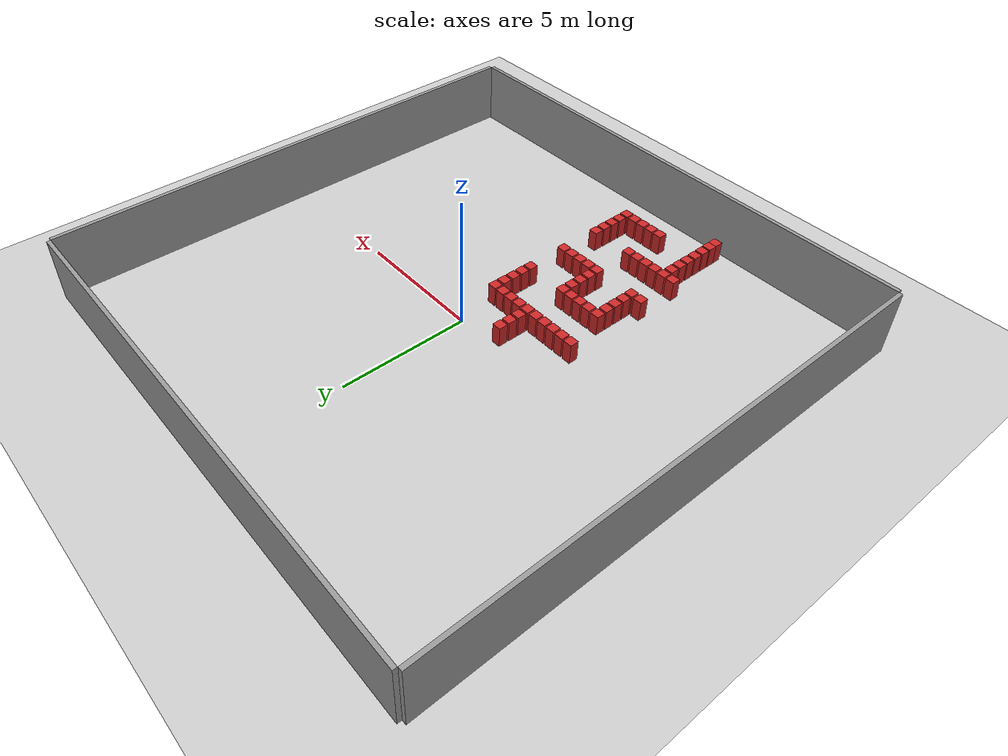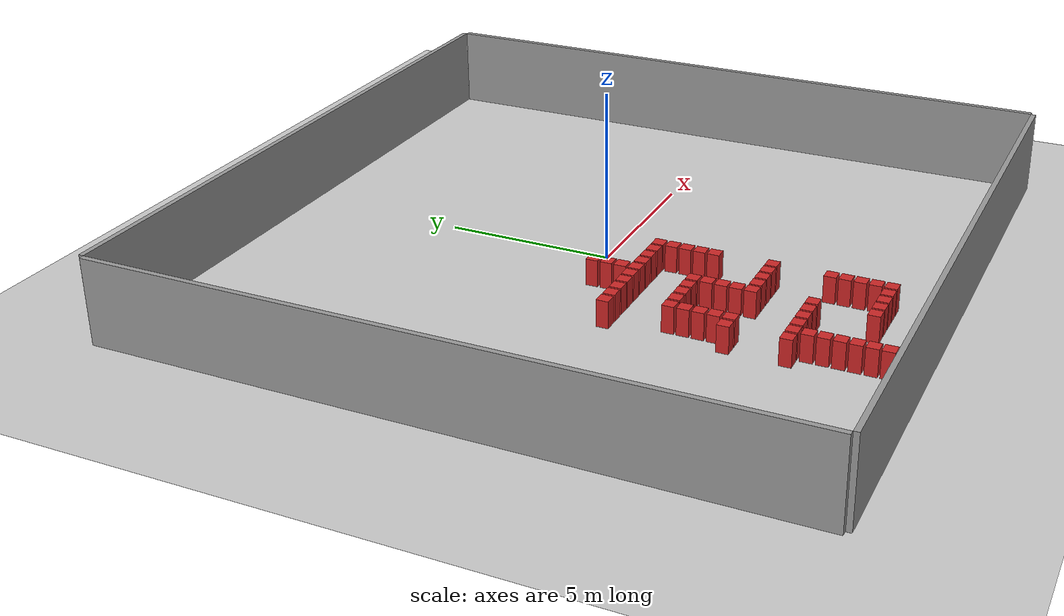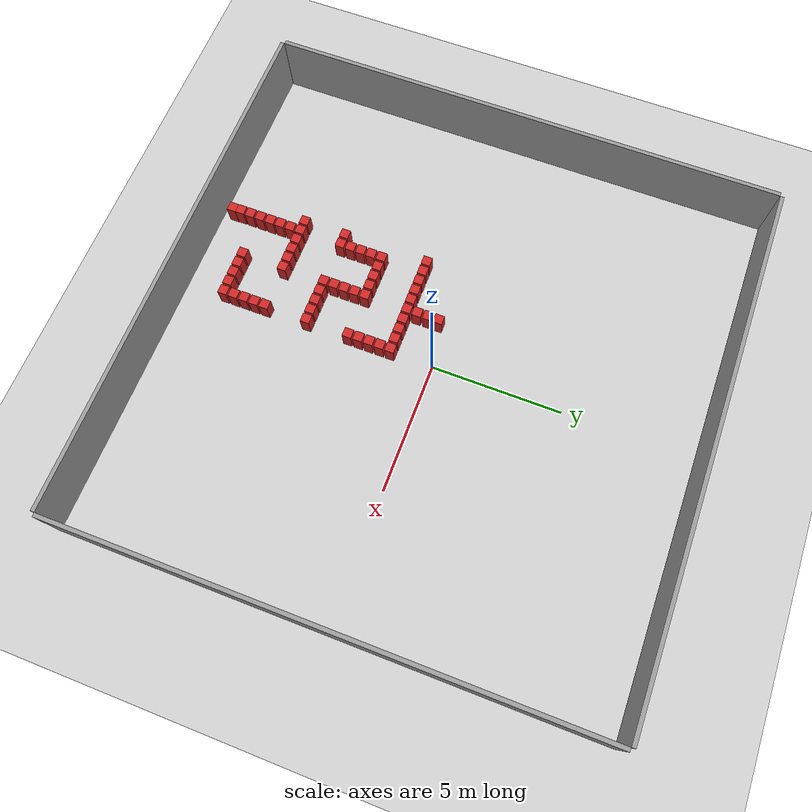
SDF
<sdf version="1.6">
 <world name="default">
  <model name="ground_plane">
   <static>1</static>
   <link name="link">
    <collision name="collision">
     <geometry><plane><normal>0 0 1</normal><size>100 100</size></plane></geometry>
     <surface><friction><ode><mu>100</mu><mu2>50</mu2></ode></friction></surface>
    </collision>
    <visual name="visual">
     <cast_shadows>0</cast_shadows>
     <geometry><plane><normal>0 0 1</normal><size>100 100</size></plane></geometry>
     <material>
      <script><uri>file://media/materials/scripts/gazebo.material</uri><name>Gazebo/Grey</name></script>
     </material>
    </visual>
   </link>
  </model>
  <model name="NamedLocations"><static>1</static><link name="DefaultStart"/></model>
  <model name="20x20_walls">
   <pose>0.044518 0.0211 0 0 -0 0</pose>
   <link name="Wall_1">
    <collision name="Wall_1_Collision">
     <geometry><box><size>20 0.15 2.5</size></box></geometry>
     <pose>0 0 1.25 0 -0 0</pose>
    </collision>
    <visual name="Wall_1_Visual">
     <pose>0 0 1.25 0 -0 0</pose>
     <geometry><box><size>20 0.15 2.5</size></box></geometry>
     <material>
      <script><uri>file://media/materials/scripts/gazebo.material</uri><name>Gazebo/Grey</name></script>
      <ambient>0.976471 0.992157 1 1</ambient>
     </material>
     <meta><layer>0</layer></meta>
    </visual>
    <pose>0 10.08 0 0 -0 0</pose>
   </link>
   <link name="Wall_3">
    <collision name="Wall_3_Collision">
     <geometry><box><size>20 0.15 2.5</size></box></geometry>
     <pose>0 0 1.25 0 -0 0</pose>
    </collision>
    <visual name="Wall_3_Visual">
     <pose>0 0 1.25 0 -0 0</pose>
     <geometry><box><size>20 0.15 2.5</size></box></geometry>
     <material>
      <script><uri>file://media/materials/scripts/gazebo.material</uri><name>Gazebo/Grey</name></script>
      <ambient>0.976471 0.992157 1 1</ambient>
     </material>
     <meta><layer>0</layer></meta>
    </visual>
    <pose>10.08 0 0 0 0 -1.5708</pose>
   </link>
   <link name="Wall_4">
    <collision name="Wall_4_Collision">
     <geometry><box><size>20 0.15 2.5</size></box></geometry>
     <pose>0 0 1.25 0 -0 0</pose>
    </collision>
    <visual name="Wall_4_Visual">
     <pose>0 0 1.25 0 -0 0</pose>
     <geometry><box><size>20 0.15 2.5</size></box></geometry>
     <material>
      <script><uri>file://media/materials/scripts/gazebo.material</uri><name>Gazebo/Grey</name></script>
      <ambient>0.976471 0.992157 1 1</ambient>
     </material>
     <meta><layer>0</layer></meta>
    </visual>
    <pose>0 -10.08 0 0 -0 3.14159</pose>
   </link>
   <link name="Wall_5">
    <collision name="Wall_5_Collision">
     <geometry><box><size>20 0.15 2.5</size></box></geometry>
     <pose>0 0 1.25 0 -0 0</pose>
    </collision>
    <visual name="Wall_5_Visual">
     <pose>0 0 1.25 0 -0 0</pose>
     <geometry><box><size>20 0.15 2.5</size></box></geometry>
     <material>
      <script><uri>file://media/materials/scripts/gazebo.material</uri><name>Gazebo/Grey</name></script>
      <ambient>0.976471 0.992157 1 1</ambient>
     </material>
     <meta><layer>0</layer></meta>
    </visual>
    <pose>-10.08 0 0 0 -0 1.5708</pose>
   </link>
   <static>1</static>
  </model>
  <model name="box_obstacle133">
   <static>0</static>
   <link name="link">
    <pose>0 0 0.1 0 -0 0</pose>
    <inertial>
     <mass>100</mass>
     <inertia>
      <ixx>0.166667</ixx>
      <ixy>0</ixy>
      <ixz>0</ixz>
      <iyy>0.166667</iyy>
      <iyz>0</iyz>
      <izz>0.166667</izz>
     </inertia>
    </inertial>
    <collision name="collision"><geometry><box><size>0.35 0.35 0.8</size></box></geometry></collision>
    <visual name="visual">
     <geometry><box><size>0.35 0.35 0.8</size></box></geometry>
     <material>
      <script><name>Gazebo/Red</name><uri>file://media/materials/scripts/gazebo.material</uri></script>
     </material>
    </visual>
   </link>
   <pose>-3.70034 -6.63994 0.300001 -1e-06 1.7e-05 0.000735</pose>
  </model>
  <model name="box_obstacle134">
   <static>0</static>
   <link name="link">
    <pose>0 0 0.1 0 -0 0</pose>
    <inertial>
     <mass>100</mass>
     <inertia>
      <ixx>0.166667</ixx>
      <ixy>0</ixy>
      <ixz>0</ixz>
      <iyy>0.166667</iyy>
      <iyz>0</iyz>
      <izz>0.166667</izz>
     </inertia>
    </inertial>
    <collision name="collision"><geometry><box><size>0.35 0.35 0.8</size></box></geometry></collision>
    <visual name="visual">
     <geometry><box><size>0.35 0.35 0.8</size></box></geometry>
     <material>
      <script><name>Gazebo/Red</name><uri>file://media/materials/scripts/gazebo.material</uri></script>
     </material>
    </visual>
   </link>
   <pose>-3.70034 -4.95994 0.300001 -1e-06 1.7e-05 0.000735</pose>
  </model>
  <model name="box_obstacle135">
   <static>0</static>
   <link name="link">
    <pose>0 0 0.1 0 -0 0</pose>
    <inertial>
     <mass>100</mass>
     <inertia>
      <ixx>0.166667</ixx>
      <ixy>0</ixy>
      <ixz>0</ixz>
      <iyy>0.166667</iyy>
      <iyz>0</iyz>
      <izz>0.166667</izz>
     </inertia>
    </inertial>
    <collision name="collision"><geometry><box><size>0.35 0.35 0.8</size></box></geometry></collision>
    <visual name="visual">
     <geometry><box><size>0.35 0.35 0.8</size></box></geometry>
     <material>
      <script><name>Gazebo/Red</name><uri>file://media/materials/scripts/gazebo.material</uri></script>
     </material>
    </visual>
   </link>
   <pose>-3.70034 -1.59994 0.300001 -1e-06 1.7e-05 0.000735</pose>
  </model>
  <model name="box_obstacle138">
   <static>0</static>
   <link name="link">
    <pose>0 0 0.1 0 -0 0</pose>
    <inertial>
     <mass>100</mass>
     <inertia>
      <ixx>0.166667</ixx>
      <ixy>0</ixy>
      <ixz>0</ixz>
      <iyy>0.166667</iyy>
      <iyz>0</iyz>
      <izz>0.166667</izz>
     </inertia>
    </inertial>
    <collision name="collision"><geometry><box><size>0.35 0.35 0.8</size></box></geometry></collision>
    <visual name="visual">
     <geometry><box><size>0.35 0.35 0.8</size></box></geometry>
     <material>
      <script><name>Gazebo/Red</name><uri>file://media/materials/scripts/gazebo.material</uri></script>
     </material>
    </visual>
   </link>
   <pose>-3.27613 -9.49865 0.3 7e-06 -4e-06 0.001217</pose>
  </model>
  <model name="box_obstacle139">
   <static>0</static>
   <link name="link">
    <pose>0 0 0.1 0 -0 0</pose>
    <inertial>
     <mass>100</mass>
     <inertia>
      <ixx>0.166667</ixx>
      <ixy>0</ixy>
      <ixz>0</ixz>
      <iyy>0.166667</iyy>
      <iyz>0</iyz>
      <izz>0.166667</izz>
     </inertia>
    </inertial>
    <collision name="collision"><geometry><box><size>0.35 0.35 0.8</size></box></geometry></collision>
    <visual name="visual">
     <geometry><box><size>0.35 0.35 0.8</size></box></geometry>
     <material>
      <script><name>Gazebo/Red</name><uri>file://media/materials/scripts/gazebo.material</uri></script>
     </material>
    </visual>
   </link>
   <pose>-3.28146 -9.14859 0.299999 6e-06 4e-06 0.001076</pose>
  </model>
  <model name="box_obstacle140">
   <static>0</static>
   <link name="link">
    <pose>0 0 0.1 0 -0 0</pose>
    <inertial>
     <mass>100</mass>
     <inertia>
      <ixx>0.166667</ixx>
      <ixy>0</ixy>
      <ixz>0</ixz>
      <iyy>0.166667</iyy>
      <iyz>0</iyz>
      <izz>0.166667</izz>
     </inertia>
    </inertial>
    <collision name="collision"><geometry><box><size>0.35 0.35 0.8</size></box></geometry></collision>
    <visual name="visual">
     <geometry><box><size>0.35 0.35 0.8</size></box></geometry>
     <material>
      <script><name>Gazebo/Red</name><uri>file://media/materials/scripts/gazebo.material</uri></script>
     </material>
    </visual>
   </link>
   <pose>-3.28034 -8.73994 0.300001 -1e-06 1.7e-05 0.000735</pose>
  </model>
  <model name="box_obstacle141">
   <static>0</static>
   <link name="link">
    <pose>0 0 0.1 0 -0 0</pose>
    <inertial>
     <mass>100</mass>
     <inertia>
      <ixx>0.166667</ixx>
      <ixy>0</ixy>
      <ixz>0</ixz>
      <iyy>0.166667</iyy>
      <iyz>0</iyz>
      <izz>0.166667</izz>
     </inertia>
    </inertial>
    <collision name="collision"><geometry><box><size>0.35 0.35 0.8</size></box></geometry></collision>
    <visual name="visual">
     <geometry><box><size>0.35 0.35 0.8</size></box></geometry>
     <material>
      <script><name>Gazebo/Red</name><uri>file://media/materials/scripts/gazebo.material</uri></script>
     </material>
    </visual>
   </link>
   <pose>-3.28034 -8.31994 0.300001 -1e-06 1.7e-05 0.000735</pose>
  </model>
  <model name="box_obstacle142">
   <static>0</static>
   <link name="link">
    <pose>0 0 0.1 0 -0 0</pose>
    <inertial>
     <mass>100</mass>
     <inertia>
      <ixx>0.166667</ixx>
      <ixy>0</ixy>
      <ixz>0</ixz>
      <iyy>0.166667</iyy>
      <iyz>0</iyz>
      <izz>0.166667</izz>
     </inertia>
    </inertial>
    <collision name="collision"><geometry><box><size>0.35 0.35 0.8</size></box></geometry></collision>
    <visual name="visual">
     <geometry><box><size>0.35 0.35 0.8</size></box></geometry>
     <material>
      <script><name>Gazebo/Red</name><uri>file://media/materials/scripts/gazebo.material</uri></script>
     </material>
    </visual>
   </link>
   <pose>-3.28034 -7.89994 0.300001 -1e-06 1.7e-05 0.000735</pose>
  </model>
  <model name="box_obstacle143">
   <static>0</static>
   <link name="link">
    <pose>0 0 0.1 0 -0 0</pose>
    <inertial>
     <mass>100</mass>
     <inertia>
      <ixx>0.166667</ixx>
      <ixy>0</ixy>
      <ixz>0</ixz>
      <iyy>0.166667</iyy>
      <iyz>0</iyz>
      <izz>0.166667</izz>
     </inertia>
    </inertial>
    <collision name="collision"><geometry><box><size>0.35 0.35 0.8</size></box></geometry></collision>
    <visual name="visual">
     <geometry><box><size>0.35 0.35 0.8</size></box></geometry>
     <material>
      <script><name>Gazebo/Red</name><uri>file://media/materials/scripts/gazebo.material</uri></script>
     </material>
    </visual>
   </link>
   <pose>-3.28034 -7.47994 0.300001 -1e-06 1.7e-05 0.000735</pose>
  </model>
  <model name="box_obstacle144">
   <static>0</static>
   <link name="link">
    <pose>0 0 0.1 0 -0 0</pose>
    <inertial>
     <mass>100</mass>
     <inertia>
      <ixx>0.166667</ixx>
      <ixy>0</ixy>
      <ixz>0</ixz>
      <iyy>0.166667</iyy>
      <iyz>0</iyz>
      <izz>0.166667</izz>
     </inertia>
    </inertial>
    <collision name="collision"><geometry><box><size>0.35 0.35 0.8</size></box></geometry></collision>
    <visual name="visual">
     <geometry><box><size>0.35 0.35 0.8</size></box></geometry>
     <material>
      <script><name>Gazebo/Red</name><uri>file://media/materials/scripts/gazebo.material</uri></script>
     </material>
    </visual>
   </link>
   <pose>-3.28034 -7.05994 0.300001 -1e-06 1.7e-05 0.000735</pose>
  </model>
  <model name="box_obstacle145">
   <static>0</static>
   <link name="link">
    <pose>0 0 0.1 0 -0 0</pose>
    <inertial>
     <mass>100</mass>
     <inertia>
      <ixx>0.166667</ixx>
      <ixy>0</ixy>
      <ixz>0</ixz>
      <iyy>0.166667</iyy>
      <iyz>0</iyz>
      <izz>0.166667</izz>
     </inertia>
    </inertial>
    <collision name="collision"><geometry><box><size>0.35 0.35 0.8</size></box></geometry></collision>
    <visual name="visual">
     <geometry><box><size>0.35 0.35 0.8</size></box></geometry>
     <material>
      <script><name>Gazebo/Red</name><uri>file://media/materials/scripts/gazebo.material</uri></script>
     </material>
    </visual>
   </link>
   <pose>-3.28034 -6.63994 0.300001 -1e-06 1.7e-05 0.000735</pose>
  </model>
  <model name="box_obstacle146">
   <static>0</static>
   <link name="link">
    <pose>0 0 0.1 0 -0 0</pose>
    <inertial>
     <mass>100</mass>
     <inertia>
      <ixx>0.166667</ixx>
      <ixy>0</ixy>
      <ixz>0</ixz>
      <iyy>0.166667</iyy>
      <iyz>0</iyz>
      <izz>0.166667</izz>
     </inertia>
    </inertial>
    <collision name="collision"><geometry><box><size>0.35 0.35 0.8</size></box></geometry></collision>
    <visual name="visual">
     <geometry><box><size>0.35 0.35 0.8</size></box></geometry>
     <material>
      <script><name>Gazebo/Red</name><uri>file://media/materials/scripts/gazebo.material</uri></script>
     </material>
    </visual>
   </link>
   <pose>-3.28034 -4.95994 0.300001 -1e-06 1.7e-05 0.000735</pose>
  </model>
  <model name="box_obstacle147">
   <static>0</static>
   <link name="link">
    <pose>0 0 0.1 0 -0 0</pose>
    <inertial>
     <mass>100</mass>
     <inertia>
      <ixx>0.166667</ixx>
      <ixy>0</ixy>
      <ixz>0</ixz>
      <iyy>0.166667</iyy>
      <iyz>0</iyz>
      <izz>0.166667</izz>
     </inertia>
    </inertial>
    <collision name="collision"><geometry><box><size>0.35 0.35 0.8</size></box></geometry></collision>
    <visual name="visual">
     <geometry><box><size>0.35 0.35 0.8</size></box></geometry>
     <material>
      <script><name>Gazebo/Red</name><uri>file://media/materials/scripts/gazebo.material</uri></script>
     </material>
    </visual>
   </link>
   <pose>-3.28034 -4.53994 0.300001 -1e-06 1.7e-05 0.000735</pose>
  </model>
  <model name="box_obstacle148">
   <static>0</static>
   <link name="link">
    <pose>0 0 0.1 0 -0 0</pose>
    <inertial>
     <mass>100</mass>
     <inertia>
      <ixx>0.166667</ixx>
      <ixy>0</ixy>
      <ixz>0</ixz>
      <iyy>0.166667</iyy>
      <iyz>0</iyz>
      <izz>0.166667</izz>
     </inertia>
    </inertial>
    <collision name="collision"><geometry><box><size>0.35 0.35 0.8</size></box></geometry></collision>
    <visual name="visual">
     <geometry><box><size>0.35 0.35 0.8</size></box></geometry>
     <material>
      <script><name>Gazebo/Red</name><uri>file://media/materials/scripts/gazebo.material</uri></script>
     </material>
    </visual>
   </link>
   <pose>-3.28034 -4.11994 0.300001 -1e-06 1.7e-05 0.000735</pose>
  </model>
  <model name="box_obstacle149">
   <static>0</static>
   <link name="link">
    <pose>0 0 0.1 0 -0 0</pose>
    <inertial>
     <mass>100</mass>
     <inertia>
      <ixx>0.166667</ixx>
      <ixy>0</ixy>
      <ixz>0</ixz>
      <iyy>0.166667</iyy>
      <iyz>0</iyz>
      <izz>0.166667</izz>
     </inertia>
    </inertial>
    <collision name="collision"><geometry><box><size>0.35 0.35 0.8</size></box></geometry></collision>
    <visual name="visual">
     <geometry><box><size>0.35 0.35 0.8</size></box></geometry>
     <material>
      <script><name>Gazebo/Red</name><uri>file://media/materials/scripts/gazebo.material</uri></script>
     </material>
    </visual>
   </link>
   <pose>-3.28034 -3.69994 0.300001 -1e-06 1.7e-05 0.000735</pose>
  </model>
  <model name="box_obstacle150">
   <static>0</static>
   <link name="link">
    <pose>0 0 0.1 0 -0 0</pose>
    <inertial>
     <mass>100</mass>
     <inertia>
      <ixx>0.166667</ixx>
      <ixy>0</ixy>
      <ixz>0</ixz>
      <iyy>0.166667</iyy>
      <iyz>0</iyz>
      <izz>0.166667</izz>
     </inertia>
    </inertial>
    <collision name="collision"><geometry><box><size>0.35 0.35 0.8</size></box></geometry></collision>
    <visual name="visual">
     <geometry><box><size>0.35 0.35 0.8</size></box></geometry>
     <material>
      <script><name>Gazebo/Red</name><uri>file://media/materials/scripts/gazebo.material</uri></script>
     </material>
    </visual>
   </link>
   <pose>-3.28034 -3.27994 0.300001 -1e-06 1.7e-05 0.000735</pose>
  </model>
  <model name="box_obstacle151">
   <static>0</static>
   <link name="link">
    <pose>0 0 0.1 0 -0 0</pose>
    <inertial>
     <mass>100</mass>
     <inertia>
      <ixx>0.166667</ixx>
      <ixy>0</ixy>
      <ixz>0</ixz>
      <iyy>0.166667</iyy>
      <iyz>0</iyz>
      <izz>0.166667</izz>
     </inertia>
    </inertial>
    <collision name="collision"><geometry><box><size>0.35 0.35 0.8</size></box></geometry></collision>
    <visual name="visual">
     <geometry><box><size>0.35 0.35 0.8</size></box></geometry>
     <material>
      <script><name>Gazebo/Red</name><uri>file://media/materials/scripts/gazebo.material</uri></script>
     </material>
    </visual>
   </link>
   <pose>-3.28034 -1.59994 0.300001 -1e-06 1.7e-05 0.000735</pose>
  </model>
  <model name="box_obstacle167">
   <static>0</static>
   <link name="link">
    <pose>0 0 0.1 0 -0 0</pose>
    <inertial>
     <mass>100</mass>
     <inertia>
      <ixx>0.166667</ixx>
      <ixy>0</ixy>
      <ixz>0</ixz>
      <iyy>0.166667</iyy>
      <iyz>0</iyz>
      <izz>0.166667</izz>
     </inertia>
    </inertial>
    <collision name="collision"><geometry><box><size>0.35 0.35 0.8</size></box></geometry></collision>
    <visual name="visual">
     <geometry><box><size>0.35 0.35 0.8</size></box></geometry>
     <material>
      <script><name>Gazebo/Red</name><uri>file://media/materials/scripts/gazebo.material</uri></script>
     </material>
    </visual>
   </link>
   <pose>-2.86034 -6.63994 0.300001 -1e-06 1.7e-05 0.000735</pose>
  </model>
  <model name="box_obstacle168">
   <static>0</static>
   <link name="link">
    <pose>0 0 0.1 0 -0 0</pose>
    <inertial>
     <mass>100</mass>
     <inertia>
      <ixx>0.166667</ixx>
      <ixy>0</ixy>
      <ixz>0</ixz>
      <iyy>0.166667</iyy>
      <iyz>0</iyz>
      <izz>0.166667</izz>
     </inertia>
    </inertial>
    <collision name="collision"><geometry><box><size>0.35 0.35 0.8</size></box></geometry></collision>
    <visual name="visual">
     <geometry><box><size>0.35 0.35 0.8</size></box></geometry>
     <material>
      <script><name>Gazebo/Red</name><uri>file://media/materials/scripts/gazebo.material</uri></script>
     </material>
    </visual>
   </link>
   <pose>-2.86034 -3.27994 0.300001 -1e-06 1.7e-05 0.000735</pose>
  </model>
  <model name="box_obstacle169">
   <static>0</static>
   <link name="link">
    <pose>0 0 0.1 0 -0 0</pose>
    <inertial>
     <mass>100</mass>
     <inertia>
      <ixx>0.166667</ixx>
      <ixy>0</ixy>
      <ixz>0</ixz>
      <iyy>0.166667</iyy>
      <iyz>0</iyz>
      <izz>0.166667</izz>
     </inertia>
    </inertial>
    <collision name="collision"><geometry><box><size>0.35 0.35 0.8</size></box></geometry></collision>
    <visual name="visual">
     <geometry><box><size>0.35 0.35 0.8</size></box></geometry>
     <material>
      <script><name>Gazebo/Red</name><uri>file://media/materials/scripts/gazebo.material</uri></script>
     </material>
    </visual>
   </link>
   <pose>-2.86034 -1.59994 0.300001 -1e-06 1.7e-05 0.000735</pose>
  </model>
  <model name="box_obstacle173">
   <static>0</static>
   <link name="link">
    <pose>0 0 0.1 0 -0 0</pose>
    <inertial>
     <mass>100</mass>
     <inertia>
      <ixx>0.166667</ixx>
      <ixy>0</ixy>
      <ixz>0</ixz>
      <iyy>0.166667</iyy>
      <iyz>0</iyz>
      <izz>0.166667</izz>
     </inertia>
    </inertial>
    <collision name="collision"><geometry><box><size>0.35 0.35 0.8</size></box></geometry></collision>
    <visual name="visual">
     <geometry><box><size>0.35 0.35 0.8</size></box></geometry>
     <material>
      <script><name>Gazebo/Red</name><uri>file://media/materials/scripts/gazebo.material</uri></script>
     </material>
    </visual>
   </link>
   <pose>-2.44034 -6.63994 0.300001 -1e-06 1.7e-05 0.000735</pose>
  </model>
  <model name="box_obstacle174">
   <static>0</static>
   <link name="link">
    <pose>0 0 0.1 0 -0 0</pose>
    <inertial>
     <mass>100</mass>
     <inertia>
      <ixx>0.166667</ixx>
      <ixy>0</ixy>
      <ixz>0</ixz>
      <iyy>0.166667</iyy>
      <iyz>0</iyz>
      <izz>0.166667</izz>
     </inertia>
    </inertial>
    <collision name="collision"><geometry><box><size>0.35 0.35 0.8</size></box></geometry></collision>
    <visual name="visual">
     <geometry><box><size>0.35 0.35 0.8</size></box></geometry>
     <material>
      <script><name>Gazebo/Red</name><uri>file://media/materials/scripts/gazebo.material</uri></script>
     </material>
    </visual>
   </link>
   <pose>-2.44034 -3.27994 0.300001 -1e-06 1.7e-05 0.000735</pose>
  </model>
  <model name="box_obstacle175">
   <static>0</static>
   <link name="link">
    <pose>0 0 0.1 0 -0 0</pose>
    <inertial>
     <mass>100</mass>
     <inertia>
      <ixx>0.166667</ixx>
      <ixy>0</ixy>
      <ixz>0</ixz>
      <iyy>0.166667</iyy>
      <iyz>0</iyz>
      <izz>0.166667</izz>
     </inertia>
    </inertial>
    <collision name="collision"><geometry><box><size>0.35 0.35 0.8</size></box></geometry></collision>
    <visual name="visual">
     <geometry><box><size>0.35 0.35 0.8</size></box></geometry>
     <material>
      <script><name>Gazebo/Red</name><uri>file://media/materials/scripts/gazebo.material</uri></script>
     </material>
    </visual>
   </link>
   <pose>-2.44034 -1.59994 0.300001 -1e-06 1.7e-05 0.000735</pose>
  </model>
  <model name="box_obstacle179">
   <static>0</static>
   <link name="link">
    <pose>0 0 0.1 0 -0 0</pose>
    <inertial>
     <mass>100</mass>
     <inertia>
      <ixx>0.166667</ixx>
      <ixy>0</ixy>
      <ixz>0</ixz>
      <iyy>0.166667</iyy>
      <iyz>0</iyz>
      <izz>0.166667</izz>
     </inertia>
    </inertial>
    <collision name="collision"><geometry><box><size>0.35 0.35 0.8</size></box></geometry></collision>
    <visual name="visual">
     <geometry><box><size>0.35 0.35 0.8</size></box></geometry>
     <material>
      <script><name>Gazebo/Red</name><uri>file://media/materials/scripts/gazebo.material</uri></script>
     </material>
    </visual>
   </link>
   <pose>-2.02034 -6.63994 0.300001 -1e-06 1.7e-05 0.000735</pose>
  </model>
  <model name="box_obstacle180">
   <static>0</static>
   <link name="link">
    <pose>0 0 0.1 0 -0 0</pose>
    <inertial>
     <mass>100</mass>
     <inertia>
      <ixx>0.166667</ixx>
      <ixy>0</ixy>
      <ixz>0</ixz>
      <iyy>0.166667</iyy>
      <iyz>0</iyz>
      <izz>0.166667</izz>
     </inertia>
    </inertial>
    <collision name="collision"><geometry><box><size>0.35 0.35 0.8</size></box></geometry></collision>
    <visual name="visual">
     <geometry><box><size>0.35 0.35 0.8</size></box></geometry>
     <material>
      <script><name>Gazebo/Red</name><uri>file://media/materials/scripts/gazebo.material</uri></script>
     </material>
    </visual>
   </link>
   <pose>-2.02034 -3.27994 0.300001 -1e-06 1.7e-05 0.000735</pose>
  </model>
  <model name="box_obstacle181">
   <static>0</static>
   <link name="link">
    <pose>0 0 0.1 0 -0 0</pose>
    <inertial>
     <mass>100</mass>
     <inertia>
      <ixx>0.166667</ixx>
      <ixy>0</ixy>
      <ixz>0</ixz>
      <iyy>0.166667</iyy>
      <iyz>0</iyz>
      <izz>0.166667</izz>
     </inertia>
    </inertial>
    <collision name="collision"><geometry><box><size>0.35 0.35 0.8</size></box></geometry></collision>
    <visual name="visual">
     <geometry><box><size>0.35 0.35 0.8</size></box></geometry>
     <material>
      <script><name>Gazebo/Red</name><uri>file://media/materials/scripts/gazebo.material</uri></script>
     </material>
    </visual>
   </link>
   <pose>-2.02034 -1.59994 0.300001 -1e-06 1.7e-05 0.000735</pose>
  </model>
  <model name="box_obstacle185">
   <static>0</static>
   <link name="link">
    <pose>0 0 0.1 0 -0 0</pose>
    <inertial>
     <mass>100</mass>
     <inertia>
      <ixx>0.166667</ixx>
      <ixy>0</ixy>
      <ixz>0</ixz>
      <iyy>0.166667</iyy>
      <iyz>0</iyz>
      <izz>0.166667</izz>
     </inertia>
    </inertial>
    <collision name="collision"><geometry><box><size>0.35 0.35 0.8</size></box></geometry></collision>
    <visual name="visual">
     <geometry><box><size>0.35 0.35 0.8</size></box></geometry>
     <material>
      <script><name>Gazebo/Red</name><uri>file://media/materials/scripts/gazebo.material</uri></script>
     </material>
    </visual>
   </link>
   <pose>-1.60034 -8.31994 0.300001 -1e-06 1.7e-05 0.000735</pose>
  </model>
  <model name="box_obstacle186">
   <static>0</static>
   <link name="link">
    <pose>0 0 0.1 0 -0 0</pose>
    <inertial>
     <mass>100</mass>
     <inertia>
      <ixx>0.166667</ixx>
      <ixy>0</ixy>
      <ixz>0</ixz>
      <iyy>0.166667</iyy>
      <iyz>0</iyz>
      <izz>0.166667</izz>
     </inertia>
    </inertial>
    <collision name="collision"><geometry><box><size>0.35 0.35 0.8</size></box></geometry></collision>
    <visual name="visual">
     <geometry><box><size>0.35 0.35 0.8</size></box></geometry>
     <material>
      <script><name>Gazebo/Red</name><uri>file://media/materials/scripts/gazebo.material</uri></script>
     </material>
    </visual>
   </link>
   <pose>-1.60034 -6.63994 0.300001 -1e-06 1.7e-05 0.000735</pose>
  </model>
  <model name="box_obstacle187">
   <static>0</static>
   <link name="link">
    <pose>0 0 0.1 0 -0 0</pose>
    <inertial>
     <mass>100</mass>
     <inertia>
      <ixx>0.166667</ixx>
      <ixy>0</ixy>
      <ixz>0</ixz>
      <iyy>0.166667</iyy>
      <iyz>0</iyz>
      <izz>0.166667</izz>
     </inertia>
    </inertial>
    <collision name="collision"><geometry><box><size>0.35 0.35 0.8</size></box></geometry></collision>
    <visual name="visual">
     <geometry><box><size>0.35 0.35 0.8</size></box></geometry>
     <material>
      <script><name>Gazebo/Red</name><uri>file://media/materials/scripts/gazebo.material</uri></script>
     </material>
    </visual>
   </link>
   <pose>-1.60034 -4.95994 0.300001 -1e-06 1.7e-05 0.000735</pose>
  </model>
  <model name="box_obstacle188">
   <static>0</static>
   <link name="link">
    <pose>0 0 0.1 0 -0 0</pose>
    <inertial>
     <mass>100</mass>
     <inertia>
      <ixx>0.166667</ixx>
      <ixy>0</ixy>
      <ixz>0</ixz>
      <iyy>0.166667</iyy>
      <iyz>0</iyz>
      <izz>0.166667</izz>
     </inertia>
    </inertial>
    <collision name="collision"><geometry><box><size>0.35 0.35 0.8</size></box></geometry></collision>
    <visual name="visual">
     <geometry><box><size>0.35 0.35 0.8</size></box></geometry>
     <material>
      <script><name>Gazebo/Red</name><uri>file://media/materials/scripts/gazebo.material</uri></script>
     </material>
    </visual>
   </link>
   <pose>-1.60034 -4.53994 0.300001 -1e-06 1.7e-05 0.000735</pose>
  </model>
  <model name="box_obstacle189">
   <static>0</static>
   <link name="link">
    <pose>0 0 0.1 0 -0 0</pose>
    <inertial>
     <mass>100</mass>
     <inertia>
      <ixx>0.166667</ixx>
      <ixy>0</ixy>
      <ixz>0</ixz>
      <iyy>0.166667</iyy>
      <iyz>0</iyz>
      <izz>0.166667</izz>
     </inertia>
    </inertial>
    <collision name="collision"><geometry><box><size>0.35 0.35 0.8</size></box></geometry></collision>
    <visual name="visual">
     <geometry><box><size>0.35 0.35 0.8</size></box></geometry>
     <material>
      <script><name>Gazebo/Red</name><uri>file://media/materials/scripts/gazebo.material</uri></script>
     </material>
    </visual>
   </link>
   <pose>-1.60034 -4.11994 0.300001 -1e-06 1.7e-05 0.000735</pose>
  </model>
  <model name="box_obstacle190">
   <static>0</static>
   <link name="link">
    <pose>0 0 0.1 0 -0 0</pose>
    <inertial>
     <mass>100</mass>
     <inertia>
      <ixx>0.166667</ixx>
      <ixy>0</ixy>
      <ixz>0</ixz>
      <iyy>0.166667</iyy>
      <iyz>0</iyz>
      <izz>0.166667</izz>
     </inertia>
    </inertial>
    <collision name="collision"><geometry><box><size>0.35 0.35 0.8</size></box></geometry></collision>
    <visual name="visual">
     <geometry><box><size>0.35 0.35 0.8</size></box></geometry>
     <material>
      <script><name>Gazebo/Red</name><uri>file://media/materials/scripts/gazebo.material</uri></script>
     </material>
    </visual>
   </link>
   <pose>-1.60034 -3.69994 0.300001 -1e-06 1.7e-05 0.000735</pose>
  </model>
  <model name="box_obstacle191">
   <static>0</static>
   <link name="link">
    <pose>0 0 0.1 0 -0 0</pose>
    <inertial>
     <mass>100</mass>
     <inertia>
      <ixx>0.166667</ixx>
      <ixy>0</ixy>
      <ixz>0</ixz>
      <iyy>0.166667</iyy>
      <iyz>0</iyz>
      <izz>0.166667</izz>
     </inertia>
    </inertial>
    <collision name="collision"><geometry><box><size>0.35 0.35 0.8</size></box></geometry></collision>
    <visual name="visual">
     <geometry><box><size>0.35 0.35 0.8</size></box></geometry>
     <material>
      <script><name>Gazebo/Red</name><uri>file://media/materials/scripts/gazebo.material</uri></script>
     </material>
    </visual>
   </link>
   <pose>-1.60034 -3.27994 0.300001 -1e-06 1.7e-05 0.000735</pose>
  </model>
  <model name="box_obstacle192">
   <static>0</static>
   <link name="link">
    <pose>0 0 0.1 0 -0 0</pose>
    <inertial>
     <mass>100</mass>
     <inertia>
      <ixx>0.166667</ixx>
      <ixy>0</ixy>
      <ixz>0</ixz>
      <iyy>0.166667</iyy>
      <iyz>0</iyz>
      <izz>0.166667</izz>
     </inertia>
    </inertial>
    <collision name="collision"><geometry><box><size>0.35 0.35 0.8</size></box></geometry></collision>
    <visual name="visual">
     <geometry><box><size>0.35 0.35 0.8</size></box></geometry>
     <material>
      <script><name>Gazebo/Red</name><uri>file://media/materials/scripts/gazebo.material</uri></script>
     </material>
    </visual>
   </link>
   <pose>-1.60034 -1.59994 0.300001 -1e-06 1.7e-05 0.000735</pose>
  </model>
  <model name="box_obstacle193">
   <static>0</static>
   <link name="link">
    <pose>0 0 0.1 0 -0 0</pose>
    <inertial>
     <mass>100</mass>
     <inertia>
      <ixx>0.166667</ixx>
      <ixy>0</ixy>
      <ixz>0</ixz>
      <iyy>0.166667</iyy>
      <iyz>0</iyz>
      <izz>0.166667</izz>
     </inertia>
    </inertial>
    <collision name="collision"><geometry><box><size>0.35 0.35 0.8</size></box></geometry></collision>
    <visual name="visual">
     <geometry><box><size>0.35 0.35 0.8</size></box></geometry>
     <material>
      <script><name>Gazebo/Red</name><uri>file://media/materials/scripts/gazebo.material</uri></script>
     </material>
    </visual>
   </link>
   <pose>-1.60034 -1.17994 0.300001 -1e-06 1.7e-05 0.000735</pose>
  </model>
  <model name="box_obstacle194">
   <static>0</static>
   <link name="link">
    <pose>0 0 0.1 0 -0 0</pose>
    <inertial>
     <mass>100</mass>
     <inertia>
      <ixx>0.166667</ixx>
      <ixy>0</ixy>
      <ixz>0</ixz>
      <iyy>0.166667</iyy>
      <iyz>0</iyz>
      <izz>0.166667</izz>
     </inertia>
    </inertial>
    <collision name="collision"><geometry><box><size>0.35 0.35 0.8</size></box></geometry></collision>
    <visual name="visual">
     <geometry><box><size>0.35 0.35 0.8</size></box></geometry>
     <material>
      <script><name>Gazebo/Red</name><uri>file://media/materials/scripts/gazebo.material</uri></script>
     </material>
    </visual>
   </link>
   <pose>-1.60034 -0.759939 0.300001 -1e-06 1.7e-05 0.000735</pose>
  </model>
  <model name="box_obstacle195">
   <static>0</static>
   <link name="link">
    <pose>0 0 0.1 0 -0 0</pose>
    <inertial>
     <mass>100</mass>
     <inertia>
      <ixx>0.166667</ixx>
      <ixy>0</ixy>
      <ixz>0</ixz>
      <iyy>0.166667</iyy>
      <iyz>0</iyz>
      <izz>0.166667</izz>
     </inertia>
    </inertial>
    <collision name="collision"><geometry><box><size>0.35 0.35 0.8</size></box></geometry></collision>
    <visual name="visual">
     <geometry><box><size>0.35 0.35 0.8</size></box></geometry>
     <material>
      <script><name>Gazebo/Red</name><uri>file://media/materials/scripts/gazebo.material</uri></script>
     </material>
    </visual>
   </link>
   <pose>-1.60034 -0.339939 0.300001 -1e-06 1.7e-05 0.000735</pose>
  </model>
  <model name="box_obstacle208">
   <static>0</static>
   <link name="link">
    <pose>0 0 0.1 0 -0 0</pose>
    <inertial>
     <mass>100</mass>
     <inertia>
      <ixx>0.166667</ixx>
      <ixy>0</ixy>
      <ixz>0</ixz>
      <iyy>0.166667</iyy>
      <iyz>0</iyz>
      <izz>0.166667</izz>
     </inertia>
    </inertial>
    <collision name="collision"><geometry><box><size>0.35 0.35 0.8</size></box></geometry></collision>
    <visual name="visual">
     <geometry><box><size>0.35 0.35 0.8</size></box></geometry>
     <material>
      <script><name>Gazebo/Red</name><uri>file://media/materials/scripts/gazebo.material</uri></script>
     </material>
    </visual>
   </link>
   <pose>-1.18034 -8.31994 0.300001 -1e-06 1.7e-05 0.000735</pose>
  </model>
  <model name="box_obstacle209">
   <static>0</static>
   <link name="link">
    <pose>0 0 0.1 0 -0 0</pose>
    <inertial>
     <mass>100</mass>
     <inertia>
      <ixx>0.166667</ixx>
      <ixy>0</ixy>
      <ixz>0</ixz>
      <iyy>0.166667</iyy>
      <iyz>0</iyz>
      <izz>0.166667</izz>
     </inertia>
    </inertial>
    <collision name="collision"><geometry><box><size>0.35 0.35 0.8</size></box></geometry></collision>
    <visual name="visual">
     <geometry><box><size>0.35 0.35 0.8</size></box></geometry>
     <material>
      <script><name>Gazebo/Red</name><uri>file://media/materials/scripts/gazebo.material</uri></script>
     </material>
    </visual>
   </link>
   <pose>-1.18034 -4.95994 0.300001 -1e-06 1.7e-05 0.000735</pose>
  </model>
  <model name="box_obstacle210">
   <static>0</static>
   <link name="link">
    <pose>0 0 0.1 0 -0 0</pose>
    <inertial>
     <mass>100</mass>
     <inertia>
      <ixx>0.166667</ixx>
      <ixy>0</ixy>
      <ixz>0</ixz>
      <iyy>0.166667</iyy>
      <iyz>0</iyz>
      <izz>0.166667</izz>
     </inertia>
    </inertial>
    <collision name="collision"><geometry><box><size>0.35 0.35 0.8</size></box></geometry></collision>
    <visual name="visual">
     <geometry><box><size>0.35 0.35 0.8</size></box></geometry>
     <material>
      <script><name>Gazebo/Red</name><uri>file://media/materials/scripts/gazebo.material</uri></script>
     </material>
    </visual>
   </link>
   <pose>-1.18034 -1.59994 0.300001 -1e-06 1.7e-05 0.000735</pose>
  </model>
  <model name="box_obstacle214">
   <static>0</static>
   <link name="link">
    <pose>0 0 0.1 0 -0 0</pose>
    <inertial>
     <mass>100</mass>
     <inertia>
      <ixx>0.166667</ixx>
      <ixy>0</ixy>
      <ixz>0</ixz>
      <iyy>0.166667</iyy>
      <iyz>0</iyz>
      <izz>0.166667</izz>
     </inertia>
    </inertial>
    <collision name="collision"><geometry><box><size>0.35 0.35 0.8</size></box></geometry></collision>
    <visual name="visual">
     <geometry><box><size>0.35 0.35 0.8</size></box></geometry>
     <material>
      <script><name>Gazebo/Red</name><uri>file://media/materials/scripts/gazebo.material</uri></script>
     </material>
    </visual>
   </link>
   <pose>-0.760339 -8.31994 0.300001 -1e-06 1.7e-05 0.000735</pose>
  </model>
  <model name="box_obstacle215">
   <static>0</static>
   <link name="link">
    <pose>0 0 0.1 0 -0 0</pose>
    <inertial>
     <mass>100</mass>
     <inertia>
      <ixx>0.166667</ixx>
      <ixy>0</ixy>
      <ixz>0</ixz>
      <iyy>0.166667</iyy>
      <iyz>0</iyz>
      <izz>0.166667</izz>
     </inertia>
    </inertial>
    <collision name="collision"><geometry><box><size>0.35 0.35 0.8</size></box></geometry></collision>
    <visual name="visual">
     <geometry><box><size>0.35 0.35 0.8</size></box></geometry>
     <material>
      <script><name>Gazebo/Red</name><uri>file://media/materials/scripts/gazebo.material</uri></script>
     </material>
    </visual>
   </link>
   <pose>-0.760339 -4.95994 0.300001 -1e-06 1.7e-05 0.000735</pose>
  </model>
  <model name="box_obstacle216">
   <static>0</static>
   <link name="link">
    <pose>0 0 0.1 0 -0 0</pose>
    <inertial>
     <mass>100</mass>
     <inertia>
      <ixx>0.166667</ixx>
      <ixy>0</ixy>
      <ixz>0</ixz>
      <iyy>0.166667</iyy>
      <iyz>0</iyz>
      <izz>0.166667</izz>
     </inertia>
    </inertial>
    <collision name="collision"><geometry><box><size>0.35 0.35 0.8</size></box></geometry></collision>
    <visual name="visual">
     <geometry><box><size>0.35 0.35 0.8</size></box></geometry>
     <material>
      <script><name>Gazebo/Red</name><uri>file://media/materials/scripts/gazebo.material</uri></script>
     </material>
    </visual>
   </link>
   <pose>-0.760339 -1.59994 0.300001 -1e-06 1.7e-05 0.000735</pose>
  </model>
  <model name="box_obstacle220">
   <static>0</static>
   <link name="link">
    <pose>0 0 0.1 0 -0 0</pose>
    <inertial>
     <mass>100</mass>
     <inertia>
      <ixx>0.166667</ixx>
      <ixy>0</ixy>
      <ixz>0</ixz>
      <iyy>0.166667</iyy>
      <iyz>0</iyz>
      <izz>0.166667</izz>
     </inertia>
    </inertial>
    <collision name="collision"><geometry><box><size>0.35 0.35 0.8</size></box></geometry></collision>
    <visual name="visual">
     <geometry><box><size>0.35 0.35 0.8</size></box></geometry>
     <material>
      <script><name>Gazebo/Red</name><uri>file://media/materials/scripts/gazebo.material</uri></script>
     </material>
    </visual>
   </link>
   <pose>-0.340339 -8.31994 0.300001 -1e-06 1.7e-05 0.000735</pose>
  </model>
  <model name="box_obstacle221">
   <static>0</static>
   <link name="link">
    <pose>0 0 0.1 0 -0 0</pose>
    <inertial>
     <mass>100</mass>
     <inertia>
      <ixx>0.166667</ixx>
      <ixy>0</ixy>
      <ixz>0</ixz>
      <iyy>0.166667</iyy>
      <iyz>0</iyz>
      <izz>0.166667</izz>
     </inertia>
    </inertial>
    <collision name="collision"><geometry><box><size>0.35 0.35 0.8</size></box></geometry></collision>
    <visual name="visual">
     <geometry><box><size>0.35 0.35 0.8</size></box></geometry>
     <material>
      <script><name>Gazebo/Red</name><uri>file://media/materials/scripts/gazebo.material</uri></script>
     </material>
    </visual>
   </link>
   <pose>-0.340339 -4.95994 0.300001 -1e-06 1.7e-05 0.000735</pose>
  </model>
  <model name="box_obstacle222">
   <static>0</static>
   <link name="link">
    <pose>0 0 0.1 0 -0 0</pose>
    <inertial>
     <mass>100</mass>
     <inertia>
      <ixx>0.166667</ixx>
      <ixy>0</ixy>
      <ixz>0</ixz>
      <iyy>0.166667</iyy>
      <iyz>0</iyz>
      <izz>0.166667</izz>
     </inertia>
    </inertial>
    <collision name="collision"><geometry><box><size>0.35 0.35 0.8</size></box></geometry></collision>
    <visual name="visual">
     <geometry><box><size>0.35 0.35 0.8</size></box></geometry>
     <material>
      <script><name>Gazebo/Red</name><uri>file://media/materials/scripts/gazebo.material</uri></script>
     </material>
    </visual>
   </link>
   <pose>-0.340339 -1.59994 0.300001 -1e-06 1.7e-05 0.000735</pose>
  </model>
  <model name="box_obstacle226">
   <static>0</static>
   <link name="link">
    <pose>0 0 0.1 0 -0 0</pose>
    <inertial>
     <mass>100</mass>
     <inertia>
      <ixx>0.166667</ixx>
      <ixy>0</ixy>
      <ixz>0</ixz>
      <iyy>0.166667</iyy>
      <iyz>0</iyz>
      <izz>0.166667</izz>
     </inertia>
    </inertial>
    <collision name="collision"><geometry><box><size>0.35 0.35 0.8</size></box></geometry></collision>
    <visual name="visual">
     <geometry><box><size>0.35 0.35 0.8</size></box></geometry>
     <material>
      <script><name>Gazebo/Red</name><uri>file://media/materials/scripts/gazebo.material</uri></script>
     </material>
    </visual>
   </link>
   <pose>0.079661 -8.31994 0.300001 -1e-06 1.7e-05 0.000735</pose>
  </model>
  <model name="box_obstacle227">
   <static>0</static>
   <link name="link">
    <pose>0 0 0.1 0 -0 0</pose>
    <inertial>
     <mass>100</mass>
     <inertia>
      <ixx>0.166667</ixx>
      <ixy>0</ixy>
      <ixz>0</ixz>
      <iyy>0.166667</iyy>
      <iyz>0</iyz>
      <izz>0.166667</izz>
     </inertia>
    </inertial>
    <collision name="collision"><geometry><box><size>0.35 0.35 0.8</size></box></geometry></collision>
    <visual name="visual">
     <geometry><box><size>0.35 0.35 0.8</size></box></geometry>
     <material>
      <script><name>Gazebo/Red</name><uri>file://media/materials/scripts/gazebo.material</uri></script>
     </material>
    </visual>
   </link>
   <pose>0.079661 -7.89994 0.300001 -1e-06 1.7e-05 0.000735</pose>
  </model>
  <model name="box_obstacle228">
   <static>0</static>
   <link name="link">
    <pose>0 0 0.1 0 -0 0</pose>
    <inertial>
     <mass>100</mass>
     <inertia>
      <ixx>0.166667</ixx>
      <ixy>0</ixy>
      <ixz>0</ixz>
      <iyy>0.166667</iyy>
      <iyz>0</iyz>
      <izz>0.166667</izz>
     </inertia>
    </inertial>
    <collision name="collision"><geometry><box><size>0.35 0.35 0.8</size></box></geometry></collision>
    <visual name="visual">
     <geometry><box><size>0.35 0.35 0.8</size></box></geometry>
     <material>
      <script><name>Gazebo/Red</name><uri>file://media/materials/scripts/gazebo.material</uri></script>
     </material>
    </visual>
   </link>
   <pose>0.079661 -7.47994 0.300001 -1e-06 1.7e-05 0.000735</pose>
  </model>
  <model name="box_obstacle229">
   <static>0</static>
   <link name="link">
    <pose>0 0 0.1 0 -0 0</pose>
    <inertial>
     <mass>100</mass>
     <inertia>
      <ixx>0.166667</ixx>
      <ixy>0</ixy>
      <ixz>0</ixz>
      <iyy>0.166667</iyy>
      <iyz>0</iyz>
      <izz>0.166667</izz>
     </inertia>
    </inertial>
    <collision name="collision"><geometry><box><size>0.35 0.35 0.8</size></box></geometry></collision>
    <visual name="visual">
     <geometry><box><size>0.35 0.35 0.8</size></box></geometry>
     <material>
      <script><name>Gazebo/Red</name><uri>file://media/materials/scripts/gazebo.material</uri></script>
     </material>
    </visual>
   </link>
   <pose>0.079661 -7.05994 0.300001 -1e-06 1.7e-05 0.000735</pose>
  </model>
  <model name="box_obstacle230">
   <static>0</static>
   <link name="link">
    <pose>0 0 0.1 0 -0 0</pose>
    <inertial>
     <mass>100</mass>
     <inertia>
      <ixx>0.166667</ixx>
      <ixy>0</ixy>
      <ixz>0</ixz>
      <iyy>0.166667</iyy>
      <iyz>0</iyz>
      <izz>0.166667</izz>
     </inertia>
    </inertial>
    <collision name="collision"><geometry><box><size>0.35 0.35 0.8</size></box></geometry></collision>
    <visual name="visual">
     <geometry><box><size>0.35 0.35 0.8</size></box></geometry>
     <material>
      <script><name>Gazebo/Red</name><uri>file://media/materials/scripts/gazebo.material</uri></script>
     </material>
    </visual>
   </link>
   <pose>0.079661 -6.63994 0.300001 -1e-06 1.7e-05 0.000735</pose>
  </model>
  <model name="box_obstacle231">
   <static>0</static>
   <link name="link">
    <pose>0 0 0.1 0 -0 0</pose>
    <inertial>
     <mass>100</mass>
     <inertia>
      <ixx>0.166667</ixx>
      <ixy>0</ixy>
      <ixz>0</ixz>
      <iyy>0.166667</iyy>
      <iyz>0</iyz>
      <izz>0.166667</izz>
     </inertia>
    </inertial>
    <collision name="collision"><geometry><box><size>0.35 0.35 0.8</size></box></geometry></collision>
    <visual name="visual">
     <geometry><box><size>0.35 0.35 0.8</size></box></geometry>
     <material>
      <script><name>Gazebo/Red</name><uri>file://media/materials/scripts/gazebo.material</uri></script>
     </material>
    </visual>
   </link>
   <pose>0.079661 -4.95994 0.300001 -1e-06 1.7e-05 0.000735</pose>
  </model>
  <model name="box_obstacle232">
   <static>0</static>
   <link name="link">
    <pose>0 0 0.1 0 -0 0</pose>
    <inertial>
     <mass>100</mass>
     <inertia>
      <ixx>0.166667</ixx>
      <ixy>0</ixy>
      <ixz>0</ixz>
      <iyy>0.166667</iyy>
      <iyz>0</iyz>
      <izz>0.166667</izz>
     </inertia>
    </inertial>
    <collision name="collision"><geometry><box><size>0.35 0.35 0.8</size></box></geometry></collision>
    <visual name="visual">
     <geometry><box><size>0.35 0.35 0.8</size></box></geometry>
     <material>
      <script><name>Gazebo/Red</name><uri>file://media/materials/scripts/gazebo.material</uri></script>
     </material>
    </visual>
   </link>
   <pose>0.079661 -3.27994 0.300001 -1e-06 1.7e-05 0.000735</pose>
  </model>
  <model name="box_obstacle233">
   <static>0</static>
   <link name="link">
    <pose>0 0 0.1 0 -0 0</pose>
    <inertial>
     <mass>100</mass>
     <inertia>
      <ixx>0.166667</ixx>
      <ixy>0</ixy>
      <ixz>0</ixz>
      <iyy>0.166667</iyy>
      <iyz>0</iyz>
      <izz>0.166667</izz>
     </inertia>
    </inertial>
    <collision name="collision"><geometry><box><size>0.35 0.35 0.8</size></box></geometry></collision>
    <visual name="visual">
     <geometry><box><size>0.35 0.35 0.8</size></box></geometry>
     <material>
      <script><name>Gazebo/Red</name><uri>file://media/materials/scripts/gazebo.material</uri></script>
     </material>
    </visual>
   </link>
   <pose>0.079661 -2.85994 0.300001 -1e-06 1.7e-05 0.000735</pose>
  </model>
  <model name="box_obstacle234">
   <static>0</static>
   <link name="link">
    <pose>0 0 0.1 0 -0 0</pose>
    <inertial>
     <mass>100</mass>
     <inertia>
      <ixx>0.166667</ixx>
      <ixy>0</ixy>
      <ixz>0</ixz>
      <iyy>0.166667</iyy>
      <iyz>0</iyz>
      <izz>0.166667</izz>
     </inertia>
    </inertial>
    <collision name="collision"><geometry><box><size>0.35 0.35 0.8</size></box></geometry></collision>
    <visual name="visual">
     <geometry><box><size>0.35 0.35 0.8</size></box></geometry>
     <material>
      <script><name>Gazebo/Red</name><uri>file://media/materials/scripts/gazebo.material</uri></script>
     </material>
    </visual>
   </link>
   <pose>0.079661 -2.43994 0.300001 -1e-06 1.7e-05 0.000735</pose>
  </model>
  <model name="box_obstacle235">
   <static>0</static>
   <link name="link">
    <pose>0 0 0.1 0 -0 0</pose>
    <inertial>
     <mass>100</mass>
     <inertia>
      <ixx>0.166667</ixx>
      <ixy>0</ixy>
      <ixz>0</ixz>
      <iyy>0.166667</iyy>
      <iyz>0</iyz>
      <izz>0.166667</izz>
     </inertia>
    </inertial>
    <collision name="collision"><geometry><box><size>0.35 0.35 0.8</size></box></geometry></collision>
    <visual name="visual">
     <geometry><box><size>0.35 0.35 0.8</size></box></geometry>
     <material>
      <script><name>Gazebo/Red</name><uri>file://media/materials/scripts/gazebo.material</uri></script>
     </material>
    </visual>
   </link>
   <pose>0.079661 -2.01994 0.300001 -1e-06 1.7e-05 0.000735</pose>
  </model>
  <model name="box_obstacle236">
   <static>0</static>
   <link name="link">
    <pose>0 0 0.1 0 -0 0</pose>
    <inertial>
     <mass>100</mass>
     <inertia>
      <ixx>0.166667</ixx>
      <ixy>0</ixy>
      <ixz>0</ixz>
      <iyy>0.166667</iyy>
      <iyz>0</iyz>
      <izz>0.166667</izz>
     </inertia>
    </inertial>
    <collision name="collision"><geometry><box><size>0.35 0.35 0.8</size></box></geometry></collision>
    <visual name="visual">
     <geometry><box><size>0.35 0.35 0.8</size></box></geometry>
     <material>
      <script><name>Gazebo/Red</name><uri>file://media/materials/scripts/gazebo.material</uri></script>
     </material>
    </visual>
   </link>
   <pose>0.079661 -1.59994 0.300001 -1e-06 1.7e-05 0.000735</pose>
  </model>
 </world>
</sdf>
